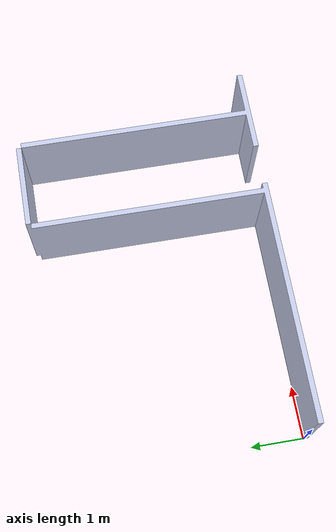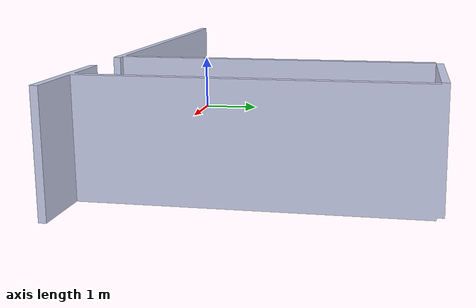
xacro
<?xml version="1.0"?>
<robot xmlns:xacro="http://www.ros.org/wiki/xacro" name="workshop_map_3">
  <link
    name="map_link">
    <inertial>
      <origin
        xyz="4.55542168674701 1.57650602409639 0.8"
        rpy="0 0 0" />
      <mass
        value="2656" />
      <inertia
        ixx="5611.22666666657"
        ixy="-1719.51999999999"
        ixz="1.41531784748751E-12"
        iyy="3638.57422222222"
        iyz="7.65649118180299E-13"
        izz="8116.57422222213" />
    </inertial>
    <visual>
      <origin
        xyz="0 0 0"
        rpy="0 0 0" />
      <geometry>
        <mesh
          filename="file:///$(find my_robot_description)/meshes/map_3/map_link.STL" />
      </geometry>
      <material
        name="">
        <color
          rgba="0.792156862745098 0.819607843137255 0.933333333333333 1" />
      </material>
    </visual>
    <collision>
      <origin
        xyz="0 0 0"
        rpy="0 0 0" />
      <geometry>
        <mesh
          filename="file:///$(find my_robot_description)/meshes/map_3/map_link.STL" />
      </geometry>
    </collision>
  </link>
</robot>
